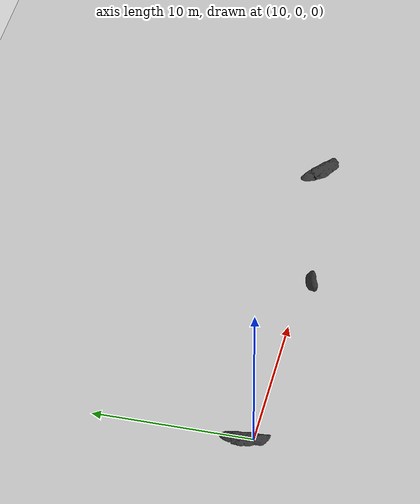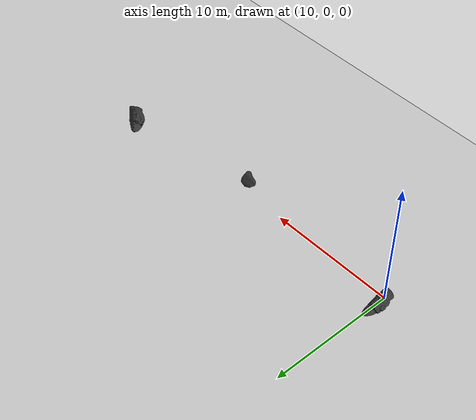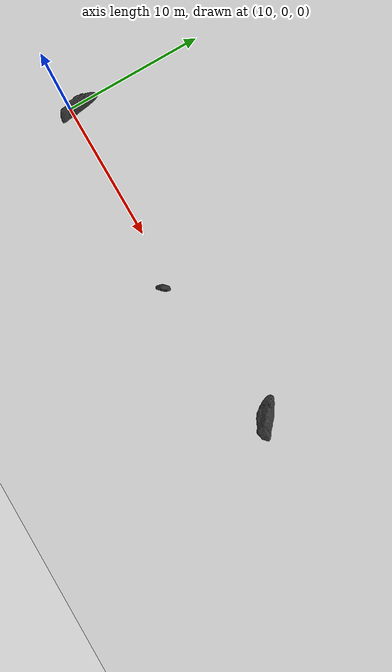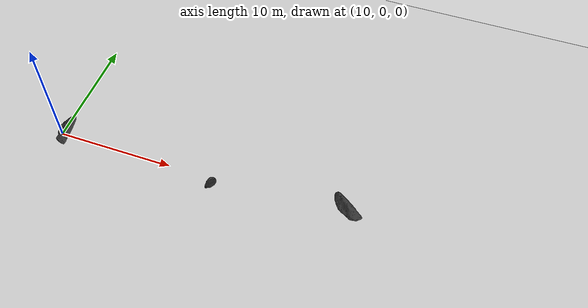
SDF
<sdf version="1.9">
 <world name="plane">
  <plugin filename="gz-sim-physics-system" name="gz::sim::systems::Physics"/>
  <plugin filename="gz-sim-user-commands-system" name="gz::sim::systems::UserCommands"/>
  <plugin filename="gz-sim-scene-broadcaster-system" name="gz::sim::systems::SceneBroadcaster"/>
  <plugin filename="gz-sim-contact-system" name="gz::sim::systems::Contact"/>
  <plugin filename="gz-sim-sensors-system" name="gz::sim::systems::Sensors">
   <render_engine>ogre2</render_engine>
  </plugin>
  <plugin filename="gz-sim-imu-system" name="gz::sim::systems::Imu"/>
  <scene>
   <ambient>0.05 0.05 0.05 1.0</ambient>
   <background>0.0 0.0 0.0 1</background>
   <origin_visual>0</origin_visual>
   <grid>false</grid>
   <shadows>true</shadows>
  </scene>
  <magnetic_field>6e-06 2.3e-05 -4.2e-05</magnetic_field>
  <gravity>0.0 0.0 -1.622</gravity>
  <scene><ambient>0 0 0</ambient><background>0 0 0</background><grid>false</grid></scene>
  <light type="directional" name="sun">
   <pose>0 0 100.0 0 0 0</pose>
   <diffuse>1.0 1.0 1.0 1</diffuse>
   <specular>0.2 0.2 0.2 1</specular>
   <intensity>5</intensity>
   <attenuation>
    <range>1000</range>
    <constant>0.9</constant>
    <linear>0.01</linear>
    <quadratic>0.001</quadratic>
   </attenuation>
   <direction>0.25 -0.5 -0.1</direction>
  </light>
  <model name="ground_plane">
   <static>true</static>
   <link name="link">
    <collision name="collision">
     <geometry><plane><normal>0 0 1</normal><size>200 50</size></plane></geometry>
    </collision>
    <visual name="visual">
     <geometry><plane><normal>0 0 1</normal><size>100 100</size></plane></geometry>
     <material>
      <ambient>0.8 0.8 0.8 1</ambient>
      <diffuse>0.8 0.8 0.8 1</diffuse>
      <specular>0.3 0.3 0.3 1</specular>
     </material>
    </visual>
   </link>
   <pose>25 0 0 0 0 0</pose>
  </model>
  <include>
   <uri>package://lunar_local_planning/worlds/models/plane_rocks/qr_rock1</uri>
   <name>qr_rock1</name>
   <pose>10 0.6 0 0 0 0</pose>
  </include>
  <include>
   <uri>package://lunar_local_planning/worlds/models/plane_rocks/qr_rock4</uri>
   <name>qr_rock4</name>
   <pose>24 -0.5 0.0065 -0.1654 0 0.8644</pose>
  </include>
  <include>
   <uri>package://lunar_local_planning/worlds/models/plane_rocks/qr_rock1</uri>
   <name>qr_rock5</name>
   <pose>35 1 0.15 0 0 0.8</pose>
  </include>
  <include>
   <uri>package://lunar_local_planning/worlds/models/plane_rocks/qr_rock4</uri>
   <name>qr_rock8</name>
   <pose>50 0 -1.26 -0.1654 0 1.57</pose>
  </include>
 </world>
</sdf>

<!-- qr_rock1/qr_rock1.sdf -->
<sdf version='1.6'>
  <model name="qr_rock1">

    <static>true</static>

    <link name="qr_rock1_link">

    <visual name="link0_visual">
        <geometry>
          <mesh>
            <uri>package://lunar_local_planning/worlds/models/plane_rocks/qr_rock1/meshes/qr_rock1.dae</uri>
            <scale>0.5 0.5 0.5</scale>
          </mesh>
        </geometry>
        <material>
          <diffuse>0.2 0.2 0.2</diffuse>
          <specular>0.2 0.2 0.2</specular>
          <pbr>
            <metal>
              <albedo_map>package://lunar_local_planning/worlds/models/plane_rocks/qr_rock1/meshes/textures/qr_rock1_diffuse.png</albedo_map>
            </metal>
          </pbr>
        </material>
      </visual>

      <collision name="qr_rock1_colission">
        <geometry>
          <mesh>
            <uri>package://lunar_local_planning/worlds/models/plane_rocks/qr_rock1/meshes/qr_rock1.dae</uri>
            <scale>0.5 0.5 0.5</scale>
          </mesh>
        </geometry>
        <max_contacts>10</max_contacts>
        <surface>
          <bounce/>
          <friction>
            <ode/>
          </friction>
          <contact>
            <ode/>
          </contact>
        </surface>
      </collision>

    </link>

  </model>
</sdf>

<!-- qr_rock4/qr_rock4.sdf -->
<sdf version='1.6'>
  <model name="qr_rock4">

    <static>true</static>

    <link name="qr_rock4_link">

    <visual name="link0_visual">
        <geometry>
          <mesh>
            <uri>package://lunar_local_planning/worlds/models/plane_rocks/qr_rock4/meshes/qr_rock4.dae</uri>
            <scale>3 3 3</scale>
          </mesh>
        </geometry>
        <material>
          <diffuse>0.2 0.2 0.2</diffuse>
          <specular>0.2 0.2 0.2</specular>
          <pbr>
            <metal>
              <albedo_map>package://lunar_local_planning/worlds/models/plane_rocks/qr_rock4/meshes/textures/qr_rock4_diffuse.png</albedo_map>
            </metal>
          </pbr>
        </material>
      </visual>

      <collision name="qr_rock4_colission">
        <geometry>
          <mesh>
            <uri>package://lunar_local_planning/worlds/models/plane_rocks/qr_rock4/meshes/qr_rock4.dae</uri>
            <scale>3 3 3</scale>
          </mesh>
        </geometry>
        <max_contacts>10</max_contacts>
        <surface>
          <bounce/>
          <friction>
            <ode/>
          </friction>
          <contact>
            <ode/>
          </contact>
        </surface>
      </collision>

    </link>

  </model>
</sdf>
